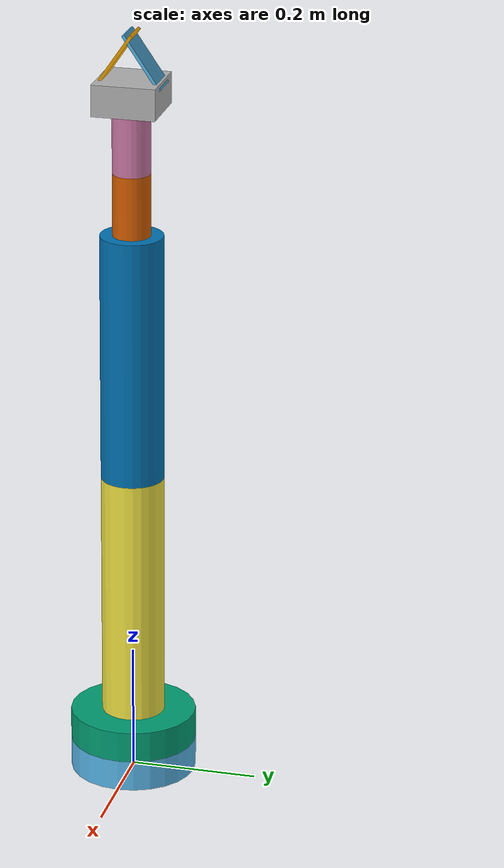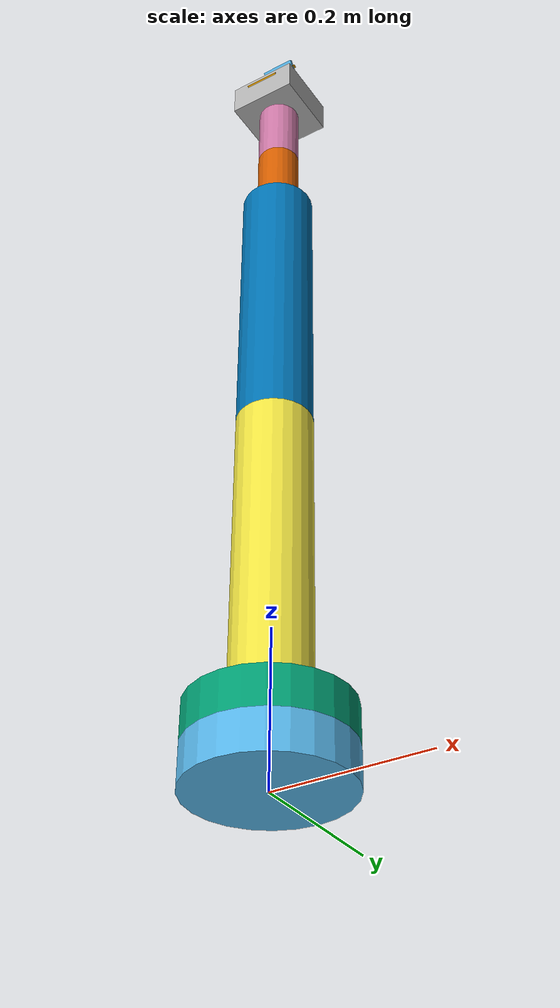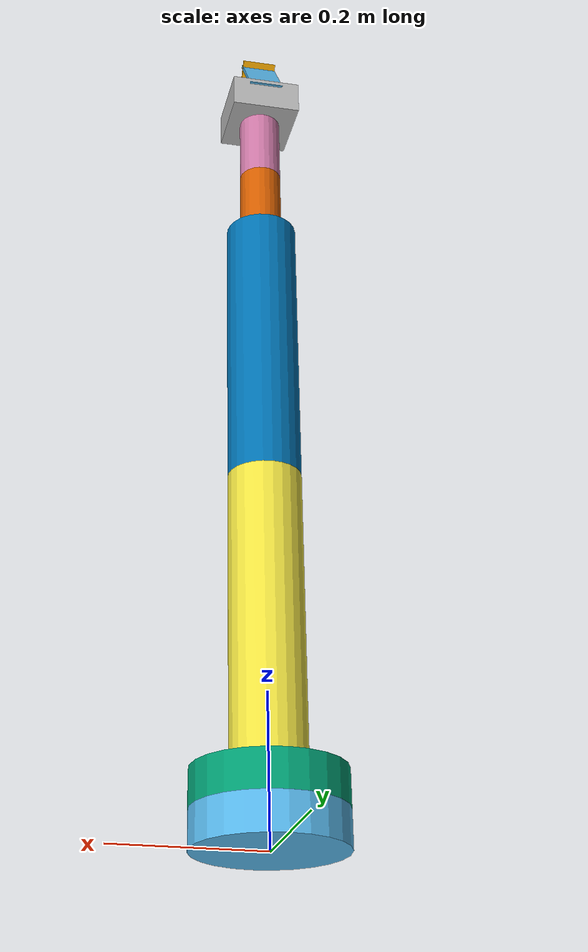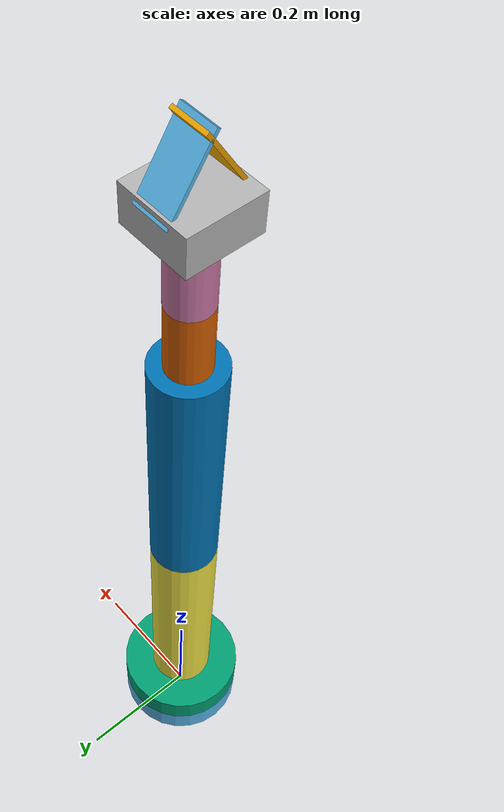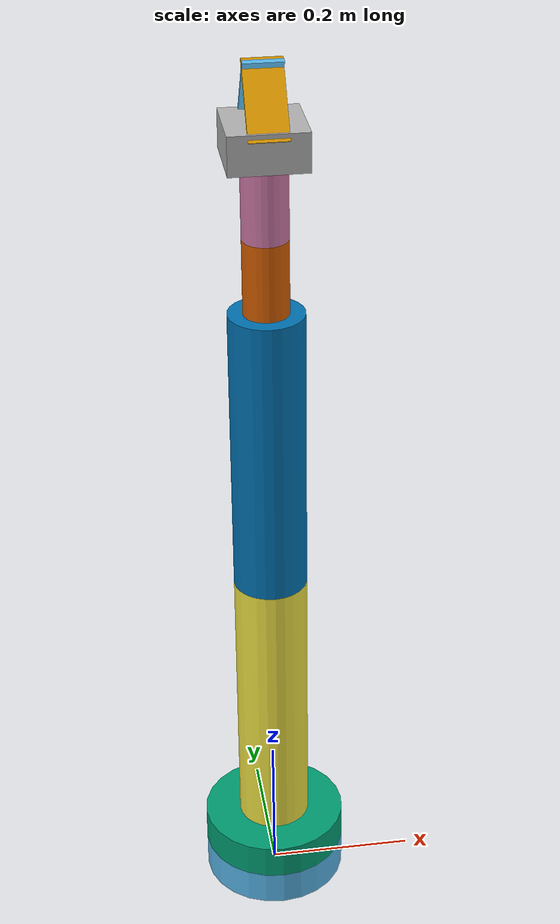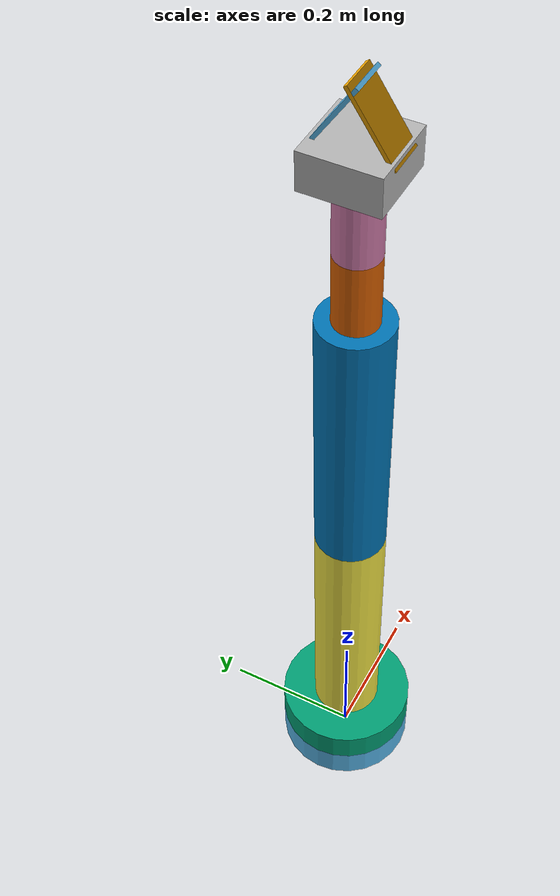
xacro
<?xml version="1.0"?>
<robot xmlns:xacro="http://www.ros.org/wiki/xacro" name="serial">

<xacro:include filename="../macros/inertia.xacro"/>
<xacro:include filename="parameters.xacro"/>
<xacro:include filename="materials.urdf.xacro"/>

<xacro:macro name="arm_link" params="name length radius mass material">
<link name="${name}">
<inertial>
    <origin rpy="0 ${pi/2} 0" xyz="${length/2} 0 0"/>
    <mass value="${mass}"/>
    <xacro:cylinder_inertia_urdf mass="${mass}" radius="${radius}" length="${length}"/>
</inertial>
<visual>
    <geometry>
        <cylinder length="${length}" radius="${radius}"/>
    </geometry>
    <origin rpy="0 ${pi/2} 0" xyz="${length/2} 0 0"/>
    <material name="${material}"/>
</visual>
<collision>
    <geometry>
        <cylinder length="${length}" radius="${radius}"/>
    </geometry>
    <origin rpy="0 ${pi/2} 0" xyz="${length/2} 0 0"/>
</collision>
</link>
</xacro:macro>

<xacro:macro name="arm_joint" params="name axis distance parent child type lower_limit upper_limit">
<joint name="${name}" type="${type}">
    <axis xyz="${axis}"/>
    <xacro:if value="${type=='revolute'}">
        <limit effort="1000.0" lower="${lower_limit}" upper="${upper_limit}" velocity="10"/>
    </xacro:if>
    <xacro:if value="${type=='continuous'}">
        <limit effort="1000.0" velocity="10"/>
    </xacro:if>
    <origin ryp="0 0 0" xyz="${distance} 0 0"/>
    <parent link="${parent}"/>
    <child link="${child}"/>
</joint>
<transmission name="${name}_tran">
    <type>transmission_interface/SimpleTransmission</type>
    <joint name="${name}">
        <hardwareInterface>hardware_interface/PositionJointInterface</hardwareInterface>
    </joint>
    <actuator name="${name}_actr">
        <hardwareInterface>hardware_interface/PositionJointInterface</hardwareInterface>
        <mechanicalReduction>1</mechanicalReduction>
    </actuator>
</transmission>
</xacro:macro>

<gazebo>
<joint name="world_fix" type="fixed">
    <pose>0 0 0 0 0 0</pose>
    <parent>world</parent>
    <child>base_link</child>
</joint>
</gazebo>

<link name="base_link"/>
<joint name="base_joint" type="fixed">
    <origin rpy="0 ${-pi/2} 0" xyz="0 0 0"/>
    <parent link="base_link"/>
    <child link="fixed_base"/>
</joint>

<xacro:arm_link name="fixed_base" length="${base_height/2}" radius="${base_radius}" mass="${base_mass/2}" material="base"/>

<xacro:arm_joint name="theta_1" axis="1 0 0" distance="${base_height/2}" parent="fixed_base" child="base" type="continuous" lower_limit="0" upper_limit="0"/>

<xacro:arm_link name="base" length="${base_height/2}" radius="${base_radius}" mass="${base_mass/2}" material="base"/>

<xacro:arm_joint name="theta_2" axis="0 1 0" distance="${base_height/2}" parent="base" child="lower" type="revolute" lower_limit="${-0.9*pi}" upper_limit="${0.9*pi}"/>

<xacro:arm_link name="lower" length="${lower_length}" radius="${arm_radius}" mass="${lower_mass}" material="arm"/>

<xacro:arm_joint name="theta_3" axis="0 1 0" distance="${lower_length}" parent="lower" child="upper" type="revolute" lower_limit="${-0.9*pi}" upper_limit="${0.9*pi}"/>

<xacro:arm_link name="upper" length="${upper_length}" radius="${arm_radius}" mass="${upper_mass}" material="arm"/>

<xacro:arm_joint name="theta_4" axis="1 0 0" distance="${upper_length}" parent="upper" child="wrist_roll" type="revolute" lower_limit="${-0.9*pi}" upper_limit="${0.9*pi}"/>

<xacro:arm_link name="wrist_roll" length="${wrist_roll_length}" radius="${wrist_radius}" mass="${wrist_roll_mass}" material="wrist"/>

<xacro:arm_joint name="theta_5" axis="0 1 0" distance="${wrist_roll_length}" parent="wrist_roll" child="wrist_pitch" type="revolute" lower_limit="${-0.9*pi}" upper_limit="${0.9*pi}"/>

<xacro:arm_link name="wrist_pitch" length="${wrist_pitch_length}" radius="${wrist_radius}" mass="${wrist_pitch_mass}" material="wrist"/>

<xacro:arm_joint name="theta_6" axis="1 0 0" distance="${wrist_pitch_length}" parent="wrist_pitch" child="tool_base" type="continuous" lower_limit="0" upper_limit="0"/>

<link name="tool_base">
<inertial>
    <origin rpy="0 ${pi/2} 0" xyz="${0.05/2} 0 0"/>
    <mass value="${tool_base_mass}"/>
    <xacro:box_inertia_urdf mass="${tool_base_mass}" w="0.1" h="0.1" d="0.05"/>
</inertial>
<visual>
    <geometry>
        <box size="0.1 0.1 0.05"/>
    </geometry>
    <origin rpy="0 ${pi/2} 0" xyz="${0.05/2} 0 0"/>
    <material name="tool"/>
</visual>
<collision>
    <geometry>
        <box size="0.1 0.1 0.05"/>
    </geometry>
    <origin rpy="0 ${pi/2} 0" xyz="${0.05/2} 0 0"/>
</collision>
</link>

<link name="gripper_left">
<visual>
    <geometry>
        <box size="0.1 0.005 0.05"/>
    </geometry>
    <origin xyz="0.05 0 0"/>
</visual>
<collision>
    <geometry>
        <box size="0.1 0.005 0.05"/>
    </geometry>
    <origin xyz="0.05 0 0"/>
</collision>
<inertial>
    <origin xyz="0.05 0 0"/>
    <mass value="${tool_base_mass/3}"/>
    <xacro:box_inertia_urdf mass="${tool_base_mass/3}" w="0.1" h="0.005" d="0.05"/>
</inertial>
</link>

<link name="gripper_right">
<visual>
    <geometry>
        <box size="0.1 0.005 0.05"/>
    </geometry>
    <origin xyz="0.05 0 0"/>
</visual>
<collision>
    <geometry>
        <box size="0.1 0.005 0.05"/>
    </geometry>
    <origin xyz="0.05 0 0"/>
</collision>
<inertial>
    <origin xyz="0.05 0 0"/>
    <mass value="${tool_base_mass/3}"/>
    <xacro:box_inertia_urdf mass="${tool_base_mass/3}" w="0.1" h="0.005" d="0.05"/>
</inertial>
</link>

<joint name="gripper" type="revolute">
    <origin xyz="0.04 -0.05 0" rpy="0 0 0.6"/>
    <parent link="tool_base"/>
    <child link="gripper_left"/>
    <axis xyz="0 0 -1"/>
    <limit
        effort="1000.0"
        lower="0"
        upper="${pi/2}"
        velocity="5"
    />
</joint>
<transmission name="gripper_tran">
    <type>transmission_interface/SimpleTransmission</type>
    <joint name="gripper">
        <hardwareInterface>hardware_interface/PositionJointInterface</hardwareInterface>
    </joint>
    <actuator name="gripper_actr">
        <hardwareInterface>hardware_interface/PositionJointInterface</hardwareInterface>
        <mechanicalReduction>1</mechanicalReduction>
    </actuator>
</transmission>

<joint name="gripper_mimic" type="revolute">
    <origin xyz="0.04 0.05 0" rpy="0 0 -0.6"/>
    <parent link="tool_base"/>
    <child link="gripper_right"/>
    <axis xyz="0 0 1"/>
    <limit
        effort="1000.0"
        lower="0"
        upper="${pi/2}"
        velocity="5"
    />
    <mimic joint="gripper"/>
</joint>

<gazebo>
    <plugin name="gazebo_ros_control" filename="libgazebo_ros_control.so"/>
</gazebo>

</robot>

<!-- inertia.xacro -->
<robot xmlns:xacro="http://www.ros.org/wiki/xacro" name="delta_parameters">

<xacro:macro name="cylinder_inertia_urdf" params="mass radius length">
<inertia
    ixx="${mass*(radius**2/4 + length**2/12)}"
    iyy="${mass*(radius**2/4 + length**2/12)}"
    izz="${mass*(radius**2/2)}"
    ixy="0" ixz="0" iyz="0"
/>
</xacro:macro>

<xacro:macro name="box_inertia_urdf" params="mass w h d">
<inertia
    ixx="${mass*(h**2 + d**2)/12}"
    iyy="${mass*(w**2 + d**2)/12}"
    izz="${mass*(w**2 + h**2)/12}"
    ixy="0" ixz="0" iyz="0"
/>
</xacro:macro>

<xacro:macro name="cylinder_inertia_sdf" params="mass radius length">
<inertia>
    <ixx>${mass*(radius**2/4 + length**2/12)}</ixx>
    <iyy>${mass*(radius**2/4 + length**2/12)}</iyy>
    <izz>${mass*(radius**2/2)}</izz>
    <ixy>0</ixy> <ixz>0</ixz> <iyz>0</iyz>
</inertia>
</xacro:macro>

<xacro:macro name="box_inertia_sdf" params="mass w h d">
<inertia>
    <ixx>${mass*(h**2 + d**2)/12}</ixx>
    <iyy>${mass*(w**2 + d**2)/12}</iyy>
    <izz>${mass*(w**2 + h**2)/12}</izz>
    <ixy>0</ixy> <ixz>0</ixz> <iyz>0</iyz>
</inertia>
</xacro:macro>

</robot>

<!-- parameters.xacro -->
<robot xmlns:xacro="http://www.ros.org/wiki/xacro" name="delta_parameters">

<!-- Properties passed as arguments -->

<xacro:arg name="lower_length" default="0.4"/>
<xacro:property name="lower_length" value="$(arg lower_length)"/>

<xacro:arg name="upper_length" default="0.4"/>
<xacro:property name="upper_length" value="$(arg upper_length)"/>

<xacro:arg name="wrist_roll_length" default="0.1"/>
<xacro:property name="wrist_roll_length" value="$(arg wrist_roll_length)"/>

<xacro:arg name="wrist_pitch_length" default="0.1"/>
<xacro:property name="wrist_pitch_length" value="$(arg wrist_pitch_length)"/>

<!-- Other properties -->

<xacro:property name="fixed_base_radius" value="0.15"/>
<xacro:property name="fixed_base_height" value="0.1"/>
<xacro:property name="base_radius" value="0.1"/>
<xacro:property name="base_height" value="0.1"/>

<xacro:property name="arm_radius" value="0.05"/>
<xacro:property name="wrist_radius" value="0.03"/>

<xacro:property name="fixed_base_mass" value="1"/>
<xacro:property name="base_mass" value="1"/>
<xacro:property name="lower_mass" value="0.5"/>
<xacro:property name="upper_mass" value="0.5"/>
<xacro:property name="wrist_roll_mass" value="0.1"/>
<xacro:property name="wrist_pitch_mass" value="0.1"/>
<xacro:property name="tool_base_mass" value="0.05"/>

</robot>
